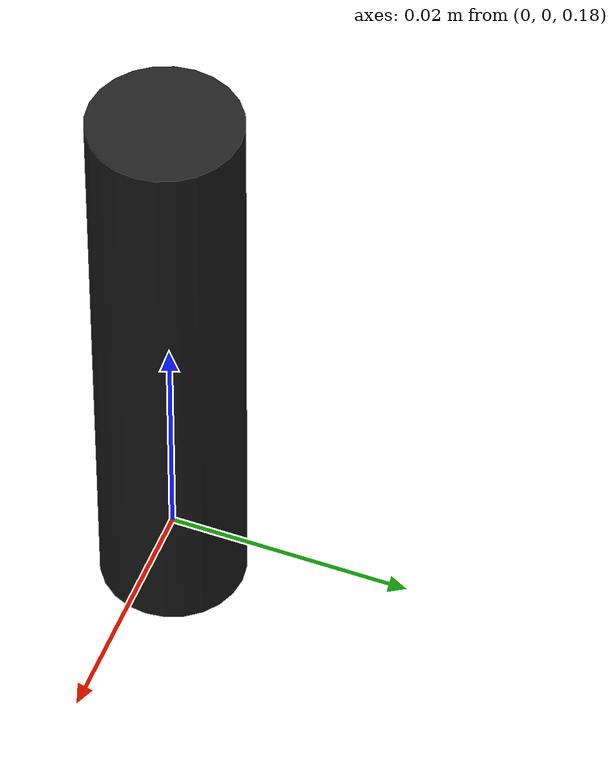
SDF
<?xml version="1.0" ?>
<sdf version="1.6">
  <model name="lidar">
    <link name="link">
      <!-- Raise Lidar 0.2 meters above ground -->
      <pose>0 0 0.2 0 0 0</pose>
      <inertial>
        <mass>0.01</mass>
        <inertia>
          <ixx>2.1733e-6</ixx>
          <ixy>0</ixy>
          <ixz>0</ixz>
          <iyy>2.1733e-6</iyy>
          <iyz>0</iyz>
          <izz>1.8e-7</izz>
        </inertia>
      </inertial>
      <visual name="visual">
        <geometry>
          <cylinder>
            <radius>0.006</radius>
            <length>0.05</length>
          </cylinder>
        </geometry>
        <material>
          <script>
            <name>Gazebo/Black</name>
          </script>
        </material>
      </visual>
      <!-- 3D Lidar Sensor -->
      <sensor name="lidar_3d" type="ray">
        <!-- Mounting pose relative to link -->
        <pose>0 0 0 0 0 0</pose>
        <ray>
          <scan>
            <horizontal>
              <samples>360</samples>
              <resolution>1</resolution>
              <min_angle>-3.14159</min_angle> <!-- -180 deg -->
              <max_angle>3.14159</max_angle>  <!-- +180 deg -->
            </horizontal>
            <vertical>
              <samples>32</samples>
              <resolution>1</resolution>
              <min_angle>-0.523599</min_angle>
              <max_angle>0.523599</max_angle>
            </vertical>
          </scan>
          <range>
            <min>0.2</min>
            <max>35.0</max>
            <resolution>0.01</resolution>
          </range>
          <noise>
            <type>gaussian</type>
            <mean>0.0</mean>
            <stddev>0.02</stddev>
          </noise>
        </ray>
        <!-- Recommended to use either a Gazebo-only plugin OR Gazebo-ROS plugin (not both at once) -->
        <plugin name="gazebo_ros_laser" filename="libgazebo_ros_ray_sensor.so">
          <ros>
            <namespace>/</namespace>
          </ros>
          <topicName>lidar_points</topicName>
          <frameName>lidar_frame</frameName>
        </plugin>
        <always_on>true</always_on>
        <update_rate>20</update_rate>
        <visualize>true</visualize>
      </sensor>
    </link>
  </model>
</sdf>
